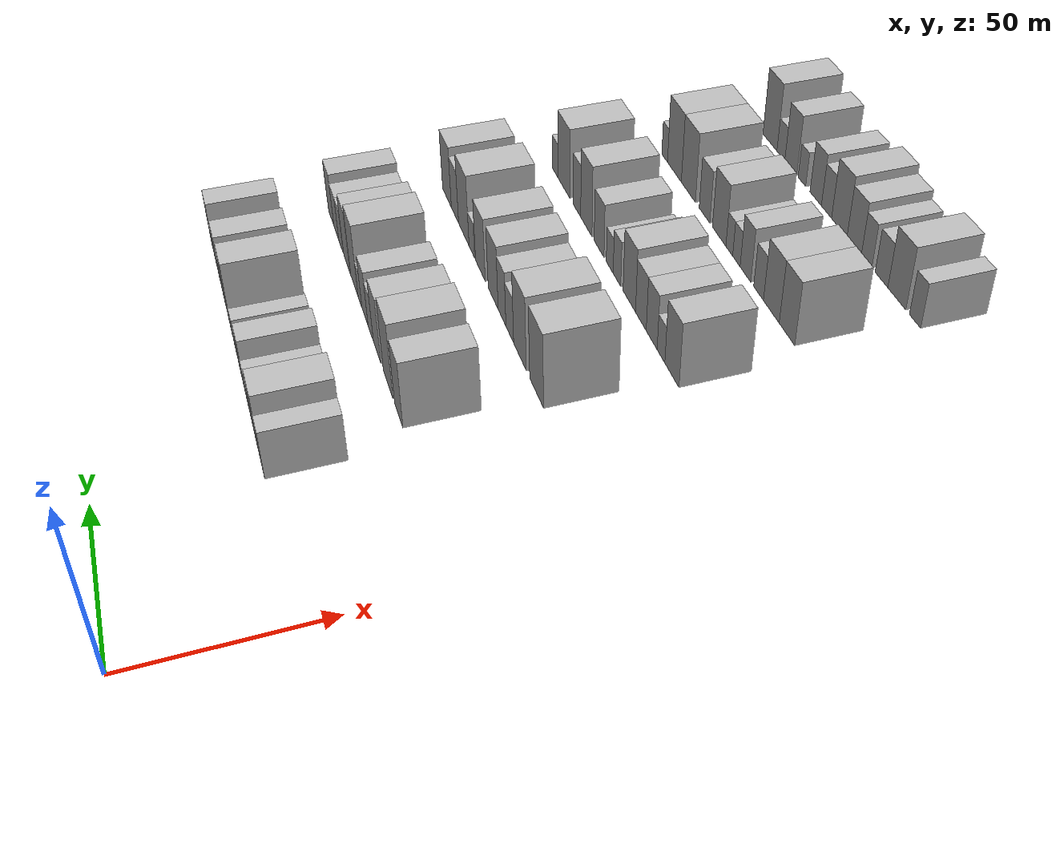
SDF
<sdf version="1.6">
 <world name="default">
  <model name="building_65">
   <static>1</static>
   <pose>50.0000 48.7703 0 0.000000 0.000000 0.000000</pose>
   <link name="link">
    <pose>0 0 7.50 0 0 0</pose>
    <collision name="collision"><geometry><box><size>20.0000 6.1437 15.0000</size></box></geometry></collision>
    <visual name="visual">
     <cast_shadows>0</cast_shadows>
     <geometry><box><size>20.0000 6.1437 15.0000</size></box></geometry>
     <material>
      <script>
       <uri>model://HANNAS_wall/materials/scripts</uri>
       <uri>model://HANNAS_wall/materials/textures</uri>
       <name>vrc/HANNAS_wall</name>
      </script>
     </material>
    </visual>
   </link>
  </model>
  <model name="building_66">
   <static>1</static>
   <pose>50.0000 56.8544 0 0.000000 0.000000 0.000000</pose>
   <link name="link">
    <pose>0 0 10.50 0 0 0</pose>
    <collision name="collision"><geometry><box><size>20.0000 10.0246 21.0000</size></box></geometry></collision>
    <visual name="visual">
     <cast_shadows>0</cast_shadows>
     <geometry><box><size>20.0000 10.0246 21.0000</size></box></geometry>
     <material>
      <script>
       <uri>model://HANNAS_wall/materials/scripts</uri>
       <uri>model://HANNAS_wall/materials/textures</uri>
       <name>vrc/HANNAS_wall</name>
      </script>
     </material>
    </visual>
   </link>
  </model>
  <model name="building_67">
   <static>1</static>
   <pose>50.0000 65.7349 0 0.000000 0.000000 0.000000</pose>
   <link name="link">
    <pose>0 0 6.00 0 0 0</pose>
    <collision name="collision"><geometry><box><size>20.0000 5.7364 12.0000</size></box></geometry></collision>
    <visual name="visual">
     <cast_shadows>0</cast_shadows>
     <geometry><box><size>20.0000 5.7364 12.0000</size></box></geometry>
     <material>
      <script>
       <uri>model://HANNAS_wall/materials/scripts</uri>
       <uri>model://HANNAS_wall/materials/textures</uri>
       <name>vrc/HANNAS_wall</name>
      </script>
     </material>
    </visual>
   </link>
  </model>
  <model name="building_68">
   <static>1</static>
   <pose>50.0000 73.3322 0 0.000000 0.000000 0.000000</pose>
   <link name="link">
    <pose>0 0 6.00 0 0 0</pose>
    <collision name="collision"><geometry><box><size>20.0000 5.4581 12.0000</size></box></geometry></collision>
    <visual name="visual">
     <cast_shadows>0</cast_shadows>
     <geometry><box><size>20.0000 5.4581 12.0000</size></box></geometry>
     <material>
      <script>
       <uri>model://HANNAS_wall/materials/scripts</uri>
       <uri>model://HANNAS_wall/materials/textures</uri>
       <name>vrc/HANNAS_wall</name>
      </script>
     </material>
    </visual>
   </link>
  </model>
  <model name="building_69">
   <static>1</static>
   <pose>50.0000 79.7934 0 0.000000 0.000000 0.000000</pose>
   <link name="link">
    <pose>0 0 9.00 0 0 0</pose>
    <collision name="collision"><geometry><box><size>20.0000 7.4644 18.0000</size></box></geometry></collision>
    <visual name="visual">
     <cast_shadows>0</cast_shadows>
     <geometry><box><size>20.0000 7.4644 18.0000</size></box></geometry>
     <material>
      <script>
       <uri>model://HANNAS_wall/materials/scripts</uri>
       <uri>model://HANNAS_wall/materials/textures</uri>
       <name>vrc/HANNAS_wall</name>
      </script>
     </material>
    </visual>
   </link>
  </model>
  <model name="building_70">
   <static>1</static>
   <pose>50.0000 86.3580 0 0.000000 0.000000 0.000000</pose>
   <link name="link">
    <pose>0 0 6.00 0 0 0</pose>
    <collision name="collision"><geometry><box><size>20.0000 5.6650 12.0000</size></box></geometry></collision>
    <visual name="visual">
     <cast_shadows>0</cast_shadows>
     <geometry><box><size>20.0000 5.6650 12.0000</size></box></geometry>
     <material>
      <script>
       <uri>model://HANNAS_wall/materials/scripts</uri>
       <uri>model://HANNAS_wall/materials/textures</uri>
       <name>vrc/HANNAS_wall</name>
      </script>
     </material>
    </visual>
   </link>
  </model>
  <model name="building_71">
   <static>1</static>
   <pose>50.0000 94.8161 0 0.000000 0.000000 0.000000</pose>
   <link name="link">
    <pose>0 0 6.00 0 0 0</pose>
    <collision name="collision"><geometry><box><size>20.0000 5.2511 12.0000</size></box></geometry></collision>
    <visual name="visual">
     <cast_shadows>0</cast_shadows>
     <geometry><box><size>20.0000 5.2511 12.0000</size></box></geometry>
     <material>
      <script>
       <uri>model://HANNAS_wall/materials/scripts</uri>
       <uri>model://HANNAS_wall/materials/textures</uri>
       <name>vrc/HANNAS_wall</name>
      </script>
     </material>
    </visual>
   </link>
  </model>
  <model name="building_72">
   <static>1</static>
   <pose>50.0000 105.2425 0 0.000000 0.000000 0.000000</pose>
   <link name="link">
    <pose>0 0 12.00 0 0 0</pose>
    <collision name="collision"><geometry><box><size>20.0000 9.6018 24.0000</size></box></geometry></collision>
    <visual name="visual">
     <cast_shadows>0</cast_shadows>
     <geometry><box><size>20.0000 9.6018 24.0000</size></box></geometry>
     <material>
      <script>
       <uri>model://HANNAS_wall/materials/scripts</uri>
       <uri>model://HANNAS_wall/materials/textures</uri>
       <name>vrc/HANNAS_wall</name>
      </script>
     </material>
    </visual>
   </link>
  </model>
  <model name="building_73">
   <static>1</static>
   <pose>50.0000 116.6393 0 0.000000 0.000000 0.000000</pose>
   <link name="link">
    <pose>0 0 7.50 0 0 0</pose>
    <collision name="collision"><geometry><box><size>20.0000 7.1916 15.0000</size></box></geometry></collision>
    <visual name="visual">
     <cast_shadows>0</cast_shadows>
     <geometry><box><size>20.0000 7.1916 15.0000</size></box></geometry>
     <material>
      <script>
       <uri>model://HANNAS_wall/materials/scripts</uri>
       <uri>model://HANNAS_wall/materials/textures</uri>
       <name>vrc/HANNAS_wall</name>
      </script>
     </material>
    </visual>
   </link>
  </model>
  <model name="building_74">
   <static>1</static>
   <pose>50.0000 125.4034 0 0.000000 0.000000 0.000000</pose>
   <link name="link">
    <pose>0 0 9.00 0 0 0</pose>
    <collision name="collision"><geometry><box><size>20.0000 8.3367 18.0000</size></box></geometry></collision>
    <visual name="visual">
     <cast_shadows>0</cast_shadows>
     <geometry><box><size>20.0000 8.3367 18.0000</size></box></geometry>
     <material>
      <script>
       <uri>model://HANNAS_wall/materials/scripts</uri>
       <uri>model://HANNAS_wall/materials/textures</uri>
       <name>vrc/HANNAS_wall</name>
      </script>
     </material>
    </visual>
   </link>
  </model>
  <model name="building_75">
   <static>1</static>
   <pose>50.0000 135.0769 0 0.000000 0.000000 0.000000</pose>
   <link name="link">
    <pose>0 0 6.00 0 0 0</pose>
    <collision name="collision"><geometry><box><size>20.0000 5.0101 12.0000</size></box></geometry></collision>
    <visual name="visual">
     <cast_shadows>0</cast_shadows>
     <geometry><box><size>20.0000 5.0101 12.0000</size></box></geometry>
     <material>
      <script>
       <uri>model://HANNAS_wall/materials/scripts</uri>
       <uri>model://HANNAS_wall/materials/textures</uri>
       <name>vrc/HANNAS_wall</name>
      </script>
     </material>
    </visual>
   </link>
  </model>
  <model name="building_76">
   <static>1</static>
   <pose>50.0000 141.3624 0 0.000000 0.000000 0.000000</pose>
   <link name="link">
    <pose>0 0 9.00 0 0 0</pose>
    <collision name="collision"><geometry><box><size>20.0000 7.5610 18.0000</size></box></geometry></collision>
    <visual name="visual">
     <cast_shadows>0</cast_shadows>
     <geometry><box><size>20.0000 7.5610 18.0000</size></box></geometry>
     <material>
      <script>
       <uri>model://HANNAS_wall/materials/scripts</uri>
       <uri>model://HANNAS_wall/materials/textures</uri>
       <name>vrc/HANNAS_wall</name>
      </script>
     </material>
    </visual>
   </link>
  </model>
  <model name="building_198">
   <static>1</static>
   <pose>85.0000 57.1970 0 0.000000 0.000000 0.000000</pose>
   <link name="link">
    <pose>0 0 10.50 0 0 0</pose>
    <collision name="collision"><geometry><box><size>20.0000 9.2751 21.0000</size></box></geometry></collision>
    <visual name="visual">
     <cast_shadows>0</cast_shadows>
     <geometry><box><size>20.0000 9.2751 21.0000</size></box></geometry>
     <material>
      <script>
       <uri>model://HANNAS_wall/materials/scripts</uri>
       <uri>model://HANNAS_wall/materials/textures</uri>
       <name>vrc/HANNAS_wall</name>
      </script>
     </material>
    </visual>
   </link>
  </model>
  <model name="building_199">
   <static>1</static>
   <pose>85.0000 69.3545 0 0.000000 0.000000 0.000000</pose>
   <link name="link">
    <pose>0 0 12.00 0 0 0</pose>
    <collision name="collision"><geometry><box><size>20.0000 11.0399 24.0000</size></box></geometry></collision>
    <visual name="visual">
     <cast_shadows>0</cast_shadows>
     <geometry><box><size>20.0000 11.0399 24.0000</size></box></geometry>
     <material>
      <script>
       <uri>model://HANNAS_wall/materials/scripts</uri>
       <uri>model://HANNAS_wall/materials/textures</uri>
       <name>vrc/HANNAS_wall</name>
      </script>
     </material>
    </visual>
   </link>
  </model>
  <model name="building_200">
   <static>1</static>
   <pose>85.0000 82.4718 0 0.000000 0.000000 0.000000</pose>
   <link name="link">
    <pose>0 0 10.50 0 0 0</pose>
    <collision name="collision"><geometry><box><size>20.0000 9.1945 21.0000</size></box></geometry></collision>
    <visual name="visual">
     <cast_shadows>0</cast_shadows>
     <geometry><box><size>20.0000 9.1945 21.0000</size></box></geometry>
     <material>
      <script>
       <uri>model://HANNAS_wall/materials/scripts</uri>
       <uri>model://HANNAS_wall/materials/textures</uri>
       <name>vrc/HANNAS_wall</name>
      </script>
     </material>
    </visual>
   </link>
  </model>
  <model name="building_201">
   <static>1</static>
   <pose>85.0000 90.3337 0 0.000000 0.000000 0.000000</pose>
   <link name="link">
    <pose>0 0 7.50 0 0 0</pose>
    <collision name="collision"><geometry><box><size>20.0000 6.5294 15.0000</size></box></geometry></collision>
    <visual name="visual">
     <cast_shadows>0</cast_shadows>
     <geometry><box><size>20.0000 6.5294 15.0000</size></box></geometry>
     <material>
      <script>
       <uri>model://HANNAS_wall/materials/scripts</uri>
       <uri>model://HANNAS_wall/materials/textures</uri>
       <name>vrc/HANNAS_wall</name>
      </script>
     </material>
    </visual>
   </link>
  </model>
  <model name="building_202">
   <static>1</static>
   <pose>85.0000 97.6658 0 0.000000 0.000000 0.000000</pose>
   <link name="link">
    <pose>0 0 9.00 0 0 0</pose>
    <collision name="collision"><geometry><box><size>20.0000 8.1348 18.0000</size></box></geometry></collision>
    <visual name="visual">
     <cast_shadows>0</cast_shadows>
     <geometry><box><size>20.0000 8.1348 18.0000</size></box></geometry>
     <material>
      <script>
       <uri>model://HANNAS_wall/materials/scripts</uri>
       <uri>model://HANNAS_wall/materials/textures</uri>
       <name>vrc/HANNAS_wall</name>
      </script>
     </material>
    </visual>
   </link>
  </model>
  <model name="building_203">
   <static>1</static>
   <pose>85.0000 104.2302 0 0.000000 0.000000 0.000000</pose>
   <link name="link">
    <pose>0 0 6.00 0 0 0</pose>
    <collision name="collision"><geometry><box><size>20.0000 4.9940 12.0000</size></box></geometry></collision>
    <visual name="visual">
     <cast_shadows>0</cast_shadows>
     <geometry><box><size>20.0000 4.9940 12.0000</size></box></geometry>
     <material>
      <script>
       <uri>model://HANNAS_wall/materials/scripts</uri>
       <uri>model://HANNAS_wall/materials/textures</uri>
       <name>vrc/HANNAS_wall</name>
      </script>
     </material>
    </visual>
   </link>
  </model>
  <model name="building_204">
   <static>1</static>
   <pose>85.0000 111.8910 0 0.000000 0.000000 0.000000</pose>
   <link name="link">
    <pose>0 0 12.00 0 0 0</pose>
    <collision name="collision"><geometry><box><size>20.0000 10.3275 24.0000</size></box></geometry></collision>
    <visual name="visual">
     <cast_shadows>0</cast_shadows>
     <geometry><box><size>20.0000 10.3275 24.0000</size></box></geometry>
     <material>
      <script>
       <uri>model://HANNAS_wall/materials/scripts</uri>
       <uri>model://HANNAS_wall/materials/textures</uri>
       <name>vrc/HANNAS_wall</name>
      </script>
     </material>
    </visual>
   </link>
  </model>
  <model name="building_205">
   <static>1</static>
   <pose>85.0000 122.5408 0 0.000000 0.000000 0.000000</pose>
   <link name="link">
    <pose>0 0 10.50 0 0 0</pose>
    <collision name="collision"><geometry><box><size>20.0000 8.9722 21.0000</size></box></geometry></collision>
    <visual name="visual">
     <cast_shadows>0</cast_shadows>
     <geometry><box><size>20.0000 8.9722 21.0000</size></box></geometry>
     <material>
      <script>
       <uri>model://HANNAS_wall/materials/scripts</uri>
       <uri>model://HANNAS_wall/materials/textures</uri>
       <name>vrc/HANNAS_wall</name>
      </script>
     </material>
    </visual>
   </link>
  </model>
  <model name="building_206">
   <static>1</static>
   <pose>85.0000 131.1273 0 0.000000 0.000000 0.000000</pose>
   <link name="link">
    <pose>0 0 7.50 0 0 0</pose>
    <collision name="collision"><geometry><box><size>20.0000 6.2009 15.0000</size></box></geometry></collision>
    <visual name="visual">
     <cast_shadows>0</cast_shadows>
     <geometry><box><size>20.0000 6.2009 15.0000</size></box></geometry>
     <material>
      <script>
       <uri>model://HANNAS_wall/materials/scripts</uri>
       <uri>model://HANNAS_wall/materials/textures</uri>
       <name>vrc/HANNAS_wall</name>
      </script>
     </material>
    </visual>
   </link>
  </model>
  <model name="building_207">
   <static>1</static>
   <pose>85.0000 137.9564 0 0.000000 0.000000 0.000000</pose>
   <link name="link">
    <pose>0 0 7.50 0 0 0</pose>
    <collision name="collision"><geometry><box><size>20.0000 7.4573 15.0000</size></box></geometry></collision>
    <visual name="visual">
     <cast_shadows>0</cast_shadows>
     <geometry><box><size>20.0000 7.4573 15.0000</size></box></geometry>
     <material>
      <script>
       <uri>model://HANNAS_wall/materials/scripts</uri>
       <uri>model://HANNAS_wall/materials/textures</uri>
       <name>vrc/HANNAS_wall</name>
      </script>
     </material>
    </visual>
   </link>
  </model>
  <model name="building_208">
   <static>1</static>
   <pose>85.0000 145.8836 0 0.000000 0.000000 0.000000</pose>
   <link name="link">
    <pose>0 0 9.00 0 0 0</pose>
    <collision name="collision"><geometry><box><size>20.0000 8.3970 18.0000</size></box></geometry></collision>
    <visual name="visual">
     <cast_shadows>0</cast_shadows>
     <geometry><box><size>20.0000 8.3970 18.0000</size></box></geometry>
     <material>
      <script>
       <uri>model://HANNAS_wall/materials/scripts</uri>
       <uri>model://HANNAS_wall/materials/textures</uri>
       <name>vrc/HANNAS_wall</name>
      </script>
     </material>
    </visual>
   </link>
  </model>
  <model name="building_323">
   <static>1</static>
   <pose>120.0000 54.5116 0 0.000000 0.000000 0.000000</pose>
   <link name="link">
    <pose>0 0 12.00 0 0 0</pose>
    <collision name="collision"><geometry><box><size>20.0000 11.9206 24.0000</size></box></geometry></collision>
    <visual name="visual">
     <cast_shadows>0</cast_shadows>
     <geometry><box><size>20.0000 11.9206 24.0000</size></box></geometry>
     <material>
      <script>
       <uri>model://HANNAS_wall/materials/scripts</uri>
       <uri>model://HANNAS_wall/materials/textures</uri>
       <name>vrc/HANNAS_wall</name>
      </script>
     </material>
    </visual>
   </link>
  </model>
  <model name="building_324">
   <static>1</static>
   <pose>120.0000 69.2105 0 0.000000 0.000000 0.000000</pose>
   <link name="link">
    <pose>0 0 12.00 0 0 0</pose>
    <collision name="collision"><geometry><box><size>20.0000 11.4773 24.0000</size></box></geometry></collision>
    <visual name="visual">
     <cast_shadows>0</cast_shadows>
     <geometry><box><size>20.0000 11.4773 24.0000</size></box></geometry>
     <material>
      <script>
       <uri>model://HANNAS_wall/materials/scripts</uri>
       <uri>model://HANNAS_wall/materials/textures</uri>
       <name>vrc/HANNAS_wall</name>
      </script>
     </material>
    </visual>
   </link>
  </model>
  <model name="building_325">
   <static>1</static>
   <pose>120.0000 78.5973 0 0.000000 0.000000 0.000000</pose>
   <link name="link">
    <pose>0 0 7.50 0 0 0</pose>
    <collision name="collision"><geometry><box><size>20.0000 7.2962 15.0000</size></box></geometry></collision>
    <visual name="visual">
     <cast_shadows>0</cast_shadows>
     <geometry><box><size>20.0000 7.2962 15.0000</size></box></geometry>
     <material>
      <script>
       <uri>model://HANNAS_wall/materials/scripts</uri>
       <uri>model://HANNAS_wall/materials/textures</uri>
       <name>vrc/HANNAS_wall</name>
      </script>
     </material>
    </visual>
   </link>
  </model>
  <model name="building_326">
   <static>1</static>
   <pose>120.0000 86.0093 0 0.000000 0.000000 0.000000</pose>
   <link name="link">
    <pose>0 0 9.00 0 0 0</pose>
    <collision name="collision"><geometry><box><size>20.0000 7.5277 18.0000</size></box></geometry></collision>
    <visual name="visual">
     <cast_shadows>0</cast_shadows>
     <geometry><box><size>20.0000 7.5277 18.0000</size></box></geometry>
     <material>
      <script>
       <uri>model://HANNAS_wall/materials/scripts</uri>
       <uri>model://HANNAS_wall/materials/textures</uri>
       <name>vrc/HANNAS_wall</name>
      </script>
     </material>
    </visual>
   </link>
  </model>
  <model name="building_327">
   <static>1</static>
   <pose>120.0000 94.7848 0 0.000000 0.000000 0.000000</pose>
   <link name="link">
    <pose>0 0 10.50 0 0 0</pose>
    <collision name="collision"><geometry><box><size>20.0000 10.0233 21.0000</size></box></geometry></collision>
    <visual name="visual">
     <cast_shadows>0</cast_shadows>
     <geometry><box><size>20.0000 10.0233 21.0000</size></box></geometry>
     <material>
      <script>
       <uri>model://HANNAS_wall/materials/scripts</uri>
       <uri>model://HANNAS_wall/materials/textures</uri>
       <name>vrc/HANNAS_wall</name>
      </script>
     </material>
    </visual>
   </link>
  </model>
  <model name="building_328">
   <static>1</static>
   <pose>120.0000 107.9368 0 0.000000 0.000000 0.000000</pose>
   <link name="link">
    <pose>0 0 10.50 0 0 0</pose>
    <collision name="collision"><geometry><box><size>20.0000 10.2807 21.0000</size></box></geometry></collision>
    <visual name="visual">
     <cast_shadows>0</cast_shadows>
     <geometry><box><size>20.0000 10.2807 21.0000</size></box></geometry>
     <material>
      <script>
       <uri>model://HANNAS_wall/materials/scripts</uri>
       <uri>model://HANNAS_wall/materials/textures</uri>
       <name>vrc/HANNAS_wall</name>
      </script>
     </material>
    </visual>
   </link>
  </model>
  <model name="building_329">
   <static>1</static>
   <pose>120.0000 117.0765 0 0.000000 0.000000 0.000000</pose>
   <link name="link">
    <pose>0 0 6.00 0 0 0</pose>
    <collision name="collision"><geometry><box><size>20.0000 5.9987 12.0000</size></box></geometry></collision>
    <visual name="visual">
     <cast_shadows>0</cast_shadows>
     <geometry><box><size>20.0000 5.9987 12.0000</size></box></geometry>
     <material>
      <script>
       <uri>model://HANNAS_wall/materials/scripts</uri>
       <uri>model://HANNAS_wall/materials/textures</uri>
       <name>vrc/HANNAS_wall</name>
      </script>
     </material>
    </visual>
   </link>
  </model>
  <model name="building_330">
   <static>1</static>
   <pose>120.0000 125.9796 0 0.000000 0.000000 0.000000</pose>
   <link name="link">
    <pose>0 0 12.00 0 0 0</pose>
    <collision name="collision"><geometry><box><size>20.0000 11.8076 24.0000</size></box></geometry></collision>
    <visual name="visual">
     <cast_shadows>0</cast_shadows>
     <geometry><box><size>20.0000 11.8076 24.0000</size></box></geometry>
     <material>
      <script>
       <uri>model://HANNAS_wall/materials/scripts</uri>
       <uri>model://HANNAS_wall/materials/textures</uri>
       <name>vrc/HANNAS_wall</name>
      </script>
     </material>
    </visual>
   </link>
  </model>
  <model name="building_331">
   <static>1</static>
   <pose>120.0000 136.0870 0 0.000000 0.000000 0.000000</pose>
   <link name="link">
    <pose>0 0 9.00 0 0 0</pose>
    <collision name="collision"><geometry><box><size>20.0000 8.4071 18.0000</size></box></geometry></collision>
    <visual name="visual">
     <cast_shadows>0</cast_shadows>
     <geometry><box><size>20.0000 8.4071 18.0000</size></box></geometry>
     <material>
      <script>
       <uri>model://HANNAS_wall/materials/scripts</uri>
       <uri>model://HANNAS_wall/materials/textures</uri>
       <name>vrc/HANNAS_wall</name>
      </script>
     </material>
    </visual>
   </link>
  </model>
  <model name="building_332">
   <static>1</static>
   <pose>120.0000 145.5192 0 0.000000 0.000000 0.000000</pose>
   <link name="link">
    <pose>0 0 10.50 0 0 0</pose>
    <collision name="collision"><geometry><box><size>20.0000 10.4573 21.0000</size></box></geometry></collision>
    <visual name="visual">
     <cast_shadows>0</cast_shadows>
     <geometry><box><size>20.0000 10.4573 21.0000</size></box></geometry>
     <material>
      <script>
       <uri>model://HANNAS_wall/materials/scripts</uri>
       <uri>model://HANNAS_wall/materials/textures</uri>
       <name>vrc/HANNAS_wall</name>
      </script>
     </material>
    </visual>
   </link>
  </model>
  <model name="building_447">
   <static>1</static>
   <pose>155.0000 50.2174 0 0.000000 0.000000 0.000000</pose>
   <link name="link">
    <pose>0 0 10.50 0 0 0</pose>
    <collision name="collision"><geometry><box><size>20.0000 9.9378 21.0000</size></box></geometry></collision>
    <visual name="visual">
     <cast_shadows>0</cast_shadows>
     <geometry><box><size>20.0000 9.9378 21.0000</size></box></geometry>
     <material>
      <script>
       <uri>model://HANNAS_wall/materials/scripts</uri>
       <uri>model://HANNAS_wall/materials/textures</uri>
       <name>vrc/HANNAS_wall</name>
      </script>
     </material>
    </visual>
   </link>
  </model>
  <model name="building_448">
   <static>1</static>
   <pose>155.0000 57.9825 0 0.000000 0.000000 0.000000</pose>
   <link name="link">
    <pose>0 0 6.00 0 0 0</pose>
    <collision name="collision"><geometry><box><size>20.0000 5.5925 12.0000</size></box></geometry></collision>
    <visual name="visual">
     <cast_shadows>0</cast_shadows>
     <geometry><box><size>20.0000 5.5925 12.0000</size></box></geometry>
     <material>
      <script>
       <uri>model://HANNAS_wall/materials/scripts</uri>
       <uri>model://HANNAS_wall/materials/textures</uri>
       <name>vrc/HANNAS_wall</name>
      </script>
     </material>
    </visual>
   </link>
  </model>
  <model name="building_449">
   <static>1</static>
   <pose>155.0000 64.8405 0 0.000000 0.000000 0.000000</pose>
   <link name="link">
    <pose>0 0 9.00 0 0 0</pose>
    <collision name="collision"><geometry><box><size>20.0000 8.1235 18.0000</size></box></geometry></collision>
    <visual name="visual">
     <cast_shadows>0</cast_shadows>
     <geometry><box><size>20.0000 8.1235 18.0000</size></box></geometry>
     <material>
      <script>
       <uri>model://HANNAS_wall/materials/scripts</uri>
       <uri>model://HANNAS_wall/materials/textures</uri>
       <name>vrc/HANNAS_wall</name>
      </script>
     </material>
    </visual>
   </link>
  </model>
  <model name="building_450">
   <static>1</static>
   <pose>155.0000 73.0160 0 0.000000 0.000000 0.000000</pose>
   <link name="link">
    <pose>0 0 9.00 0 0 0</pose>
    <collision name="collision"><geometry><box><size>20.0000 8.2276 18.0000</size></box></geometry></collision>
    <visual name="visual">
     <cast_shadows>0</cast_shadows>
     <geometry><box><size>20.0000 8.2276 18.0000</size></box></geometry>
     <material>
      <script>
       <uri>model://HANNAS_wall/materials/scripts</uri>
       <uri>model://HANNAS_wall/materials/textures</uri>
       <name>vrc/HANNAS_wall</name>
      </script>
     </material>
    </visual>
   </link>
  </model>
  <model name="building_451">
   <static>1</static>
   <pose>155.0000 82.0746 0 0.000000 0.000000 0.000000</pose>
   <link name="link">
    <pose>0 0 10.50 0 0 0</pose>
    <collision name="collision"><geometry><box><size>20.0000 9.8895 21.0000</size></box></geometry></collision>
    <visual name="visual">
     <cast_shadows>0</cast_shadows>
     <geometry><box><size>20.0000 9.8895 21.0000</size></box></geometry>
     <material>
      <script>
       <uri>model://HANNAS_wall/materials/scripts</uri>
       <uri>model://HANNAS_wall/materials/textures</uri>
       <name>vrc/HANNAS_wall</name>
      </script>
     </material>
    </visual>
   </link>
  </model>
  <model name="building_452">
   <static>1</static>
   <pose>155.0000 92.0950 0 0.000000 0.000000 0.000000</pose>
   <link name="link">
    <pose>0 0 7.50 0 0 0</pose>
    <collision name="collision"><geometry><box><size>20.0000 6.1512 15.0000</size></box></geometry></collision>
    <visual name="visual">
     <cast_shadows>0</cast_shadows>
     <geometry><box><size>20.0000 6.1512 15.0000</size></box></geometry>
     <material>
      <script>
       <uri>model://HANNAS_wall/materials/scripts</uri>
       <uri>model://HANNAS_wall/materials/textures</uri>
       <name>vrc/HANNAS_wall</name>
      </script>
     </material>
    </visual>
   </link>
  </model>
  <model name="building_453">
   <static>1</static>
   <pose>155.0000 98.0946 0 0.000000 0.000000 0.000000</pose>
   <link name="link">
    <pose>0 0 6.00 0 0 0</pose>
    <collision name="collision"><geometry><box><size>20.0000 5.8481 12.0000</size></box></geometry></collision>
    <visual name="visual">
     <cast_shadows>0</cast_shadows>
     <geometry><box><size>20.0000 5.8481 12.0000</size></box></geometry>
     <material>
      <script>
       <uri>model://HANNAS_wall/materials/scripts</uri>
       <uri>model://HANNAS_wall/materials/textures</uri>
       <name>vrc/HANNAS_wall</name>
      </script>
     </material>
    </visual>
   </link>
  </model>
  <model name="building_454">
   <static>1</static>
   <pose>155.0000 107.2771 0 0.000000 0.000000 0.000000</pose>
   <link name="link">
    <pose>0 0 9.00 0 0 0</pose>
    <collision name="collision"><geometry><box><size>20.0000 8.5168 18.0000</size></box></geometry></collision>
    <visual name="visual">
     <cast_shadows>0</cast_shadows>
     <geometry><box><size>20.0000 8.5168 18.0000</size></box></geometry>
     <material>
      <script>
       <uri>model://HANNAS_wall/materials/scripts</uri>
       <uri>model://HANNAS_wall/materials/textures</uri>
       <name>vrc/HANNAS_wall</name>
      </script>
     </material>
    </visual>
   </link>
  </model>
  <model name="building_455">
   <static>1</static>
   <pose>155.0000 118.6561 0 0.000000 0.000000 0.000000</pose>
   <link name="link">
    <pose>0 0 12.00 0 0 0</pose>
    <collision name="collision"><geometry><box><size>20.0000 10.2411 24.0000</size></box></geometry></collision>
    <visual name="visual">
     <cast_shadows>0</cast_shadows>
     <geometry><box><size>20.0000 10.2411 24.0000</size></box></geometry>
     <material>
      <script>
       <uri>model://HANNAS_wall/materials/scripts</uri>
       <uri>model://HANNAS_wall/materials/textures</uri>
       <name>vrc/HANNAS_wall</name>
      </script>
     </material>
    </visual>
   </link>
  </model>
  <model name="building_456">
   <static>1</static>
   <pose>155.0000 127.4359 0 0.000000 0.000000 0.000000</pose>
   <link name="link">
    <pose>0 0 9.00 0 0 0</pose>
    <collision name="collision"><geometry><box><size>20.0000 7.3186 18.0000</size></box></geometry></collision>
    <visual name="visual">
     <cast_shadows>0</cast_shadows>
     <geometry><box><size>20.0000 7.3186 18.0000</size></box></geometry>
     <material>
      <script>
       <uri>model://HANNAS_wall/materials/scripts</uri>
       <uri>model://HANNAS_wall/materials/textures</uri>
       <name>vrc/HANNAS_wall</name>
      </script>
     </material>
    </visual>
   </link>
  </model>
  <model name="building_457">
   <static>1</static>
   <pose>155.0000 139.9055 0 0.000000 0.000000 0.000000</pose>
   <link name="link">
    <pose>0 0 12.00 0 0 0</pose>
    <collision name="collision"><geometry><box><size>20.0000 11.6207 24.0000</size></box></geometry></collision>
    <visual name="visual">
     <cast_shadows>0</cast_shadows>
     <geometry><box><size>20.0000 11.6207 24.0000</size></box></geometry>
     <material>
      <script>
       <uri>model://HANNAS_wall/materials/scripts</uri>
       <uri>model://HANNAS_wall/materials/textures</uri>
       <name>vrc/HANNAS_wall</name>
      </script>
     </material>
    </visual>
   </link>
  </model>
  <model name="building_458">
   <static>1</static>
   <pose>155.0000 148.5525 0 0.000000 0.000000 0.000000</pose>
   <link name="link">
    <pose>0 0 6.00 0 0 0</pose>
    <collision name="collision"><geometry><box><size>20.0000 5.6733 12.0000</size></box></geometry></collision>
    <visual name="visual">
     <cast_shadows>0</cast_shadows>
     <geometry><box><size>20.0000 5.6733 12.0000</size></box></geometry>
     <material>
      <script>
       <uri>model://HANNAS_wall/materials/scripts</uri>
       <uri>model://HANNAS_wall/materials/textures</uri>
       <name>vrc/HANNAS_wall</name>
      </script>
     </material>
    </visual>
   </link>
  </model>
  <model name="building_577">
   <static>1</static>
   <pose>190.0000 55.9498 0 0.000000 0.000000 0.000000</pose>
   <link name="link">
    <pose>0 0 10.50 0 0 0</pose>
    <collision name="collision"><geometry><box><size>20.0000 9.7332 21.0000</size></box></geometry></collision>
    <visual name="visual">
     <cast_shadows>0</cast_shadows>
     <geometry><box><size>20.0000 9.7332 21.0000</size></box></geometry>
     <material>
      <script>
       <uri>model://HANNAS_wall/materials/scripts</uri>
       <uri>model://HANNAS_wall/materials/textures</uri>
       <name>vrc/HANNAS_wall</name>
      </script>
     </material>
    </visual>
   </link>
  </model>
  <model name="building_578">
   <static>1</static>
   <pose>190.0000 65.9255 0 0.000000 0.000000 0.000000</pose>
   <link name="link">
    <pose>0 0 10.50 0 0 0</pose>
    <collision name="collision"><geometry><box><size>20.0000 10.2181 21.0000</size></box></geometry></collision>
    <visual name="visual">
     <cast_shadows>0</cast_shadows>
     <geometry><box><size>20.0000 10.2181 21.0000</size></box></geometry>
     <material>
      <script>
       <uri>model://HANNAS_wall/materials/scripts</uri>
       <uri>model://HANNAS_wall/materials/textures</uri>
       <name>vrc/HANNAS_wall</name>
      </script>
     </material>
    </visual>
   </link>
  </model>
  <model name="building_579">
   <static>1</static>
   <pose>190.0000 74.3119 0 0.000000 0.000000 0.000000</pose>
   <link name="link">
    <pose>0 0 7.50 0 0 0</pose>
    <collision name="collision"><geometry><box><size>20.0000 6.5547 15.0000</size></box></geometry></collision>
    <visual name="visual">
     <cast_shadows>0</cast_shadows>
     <geometry><box><size>20.0000 6.5547 15.0000</size></box></geometry>
     <material>
      <script>
       <uri>model://HANNAS_wall/materials/scripts</uri>
       <uri>model://HANNAS_wall/materials/textures</uri>
       <name>vrc/HANNAS_wall</name>
      </script>
     </material>
    </visual>
   </link>
  </model>
  <model name="building_580">
   <static>1</static>
   <pose>190.0000 83.2847 0 0.000000 0.000000 0.000000</pose>
   <link name="link">
    <pose>0 0 9.00 0 0 0</pose>
    <collision name="collision"><geometry><box><size>20.0000 7.3909 18.0000</size></box></geometry></collision>
    <visual name="visual">
     <cast_shadows>0</cast_shadows>
     <geometry><box><size>20.0000 7.3909 18.0000</size></box></geometry>
     <material>
      <script>
       <uri>model://HANNAS_wall/materials/scripts</uri>
       <uri>model://HANNAS_wall/materials/textures</uri>
       <name>vrc/HANNAS_wall</name>
      </script>
     </material>
    </visual>
   </link>
  </model>
  <model name="building_581">
   <static>1</static>
   <pose>190.0000 89.6209 0 0.000000 0.000000 0.000000</pose>
   <link name="link">
    <pose>0 0 6.00 0 0 0</pose>
    <collision name="collision"><geometry><box><size>20.0000 5.2814 12.0000</size></box></geometry></collision>
    <visual name="visual">
     <cast_shadows>0</cast_shadows>
     <geometry><box><size>20.0000 5.2814 12.0000</size></box></geometry>
     <material>
      <script>
       <uri>model://HANNAS_wall/materials/scripts</uri>
       <uri>model://HANNAS_wall/materials/textures</uri>
       <name>vrc/HANNAS_wall</name>
      </script>
     </material>
    </visual>
   </link>
  </model>
  <model name="building_582">
   <static>1</static>
   <pose>190.0000 94.7127 0 0.000000 0.000000 0.000000</pose>
   <link name="link">
    <pose>0 0 6.00 0 0 0</pose>
    <collision name="collision"><geometry><box><size>20.0000 4.9022 12.0000</size></box></geometry></collision>
    <visual name="visual">
     <cast_shadows>0</cast_shadows>
     <geometry><box><size>20.0000 4.9022 12.0000</size></box></geometry>
     <material>
      <script>
       <uri>model://HANNAS_wall/materials/scripts</uri>
       <uri>model://HANNAS_wall/materials/textures</uri>
       <name>vrc/HANNAS_wall</name>
      </script>
     </material>
    </visual>
   </link>
  </model>
  <model name="building_583">
   <static>1</static>
   <pose>190.0000 102.1644 0 0.000000 0.000000 0.000000</pose>
   <link name="link">
    <pose>0 0 10.50 0 0 0</pose>
    <collision name="collision"><geometry><box><size>20.0000 10.0011 21.0000</size></box></geometry></collision>
    <visual name="visual">
     <cast_shadows>0</cast_shadows>
     <geometry><box><size>20.0000 10.0011 21.0000</size></box></geometry>
     <material>
      <script>
       <uri>model://HANNAS_wall/materials/scripts</uri>
       <uri>model://HANNAS_wall/materials/textures</uri>
       <name>vrc/HANNAS_wall</name>
      </script>
     </material>
    </visual>
   </link>
  </model>
  <model name="building_584">
   <static>1</static>
   <pose>190.0000 113.2520 0 0.000000 0.000000 0.000000</pose>
   <link name="link">
    <pose>0 0 9.00 0 0 0</pose>
    <collision name="collision"><geometry><box><size>20.0000 8.1742 18.0000</size></box></geometry></collision>
    <visual name="visual">
     <cast_shadows>0</cast_shadows>
     <geometry><box><size>20.0000 8.1742 18.0000</size></box></geometry>
     <material>
      <script>
       <uri>model://HANNAS_wall/materials/scripts</uri>
       <uri>model://HANNAS_wall/materials/textures</uri>
       <name>vrc/HANNAS_wall</name>
      </script>
     </material>
    </visual>
   </link>
  </model>
  <model name="building_585">
   <static>1</static>
   <pose>190.0000 126.0266 0 0.000000 0.000000 0.000000</pose>
   <link name="link">
    <pose>0 0 12.00 0 0 0</pose>
    <collision name="collision"><geometry><box><size>20.0000 11.3749 24.0000</size></box></geometry></collision>
    <visual name="visual">
     <cast_shadows>0</cast_shadows>
     <geometry><box><size>20.0000 11.3749 24.0000</size></box></geometry>
     <material>
      <script>
       <uri>model://HANNAS_wall/materials/scripts</uri>
       <uri>model://HANNAS_wall/materials/textures</uri>
       <name>vrc/HANNAS_wall</name>
      </script>
     </material>
    </visual>
   </link>
  </model>
  <model name="building_586">
   <static>1</static>
   <pose>190.0000 137.5193 0 0.000000 0.000000 0.000000</pose>
   <link name="link">
    <pose>0 0 12.00 0 0 0</pose>
    <collision name="collision"><geometry><box><size>20.0000 11.6105 24.0000</size></box></geometry></collision>
    <visual name="visual">
     <cast_shadows>0</cast_shadows>
     <geometry><box><size>20.0000 11.6105 24.0000</size></box></geometry>
     <material>
      <script>
       <uri>model://HANNAS_wall/materials/scripts</uri>
       <uri>model://HANNAS_wall/materials/textures</uri>
       <name>vrc/HANNAS_wall</name>
      </script>
     </material>
    </visual>
   </link>
  </model>
  <model name="building_587">
   <static>1</static>
   <pose>190.0000 145.7478 0 0.000000 0.000000 0.000000</pose>
   <link name="link">
    <pose>0 0 6.00 0 0 0</pose>
    <collision name="collision"><geometry><box><size>20.0000 4.8467 12.0000</size></box></geometry></collision>
    <visual name="visual">
     <cast_shadows>0</cast_shadows>
     <geometry><box><size>20.0000 4.8467 12.0000</size></box></geometry>
     <material>
      <script>
       <uri>model://HANNAS_wall/materials/scripts</uri>
       <uri>model://HANNAS_wall/materials/textures</uri>
       <name>vrc/HANNAS_wall</name>
      </script>
     </material>
    </visual>
   </link>
  </model>
  <model name="building_695">
   <static>1</static>
   <pose>225.0000 50.2087 0 0.000000 0.000000 0.000000</pose>
   <link name="link">
    <pose>0 0 7.50 0 0 0</pose>
    <collision name="collision"><geometry><box><size>20.0000 6.1262 15.0000</size></box></geometry></collision>
    <visual name="visual">
     <cast_shadows>0</cast_shadows>
     <geometry><box><size>20.0000 6.1262 15.0000</size></box></geometry>
     <material>
      <script>
       <uri>model://HANNAS_wall/materials/scripts</uri>
       <uri>model://HANNAS_wall/materials/textures</uri>
       <name>vrc/HANNAS_wall</name>
      </script>
     </material>
    </visual>
   </link>
  </model>
  <model name="building_696">
   <static>1</static>
   <pose>225.0000 60.4021 0 0.000000 0.000000 0.000000</pose>
   <link name="link">
    <pose>0 0 10.50 0 0 0</pose>
    <collision name="collision"><geometry><box><size>20.0000 10.2606 21.0000</size></box></geometry></collision>
    <visual name="visual">
     <cast_shadows>0</cast_shadows>
     <geometry><box><size>20.0000 10.2606 21.0000</size></box></geometry>
     <material>
      <script>
       <uri>model://HANNAS_wall/materials/scripts</uri>
       <uri>model://HANNAS_wall/materials/textures</uri>
       <name>vrc/HANNAS_wall</name>
      </script>
     </material>
    </visual>
   </link>
  </model>
  <model name="building_697">
   <static>1</static>
   <pose>225.0000 69.2415 0 0.000000 0.000000 0.000000</pose>
   <link name="link">
    <pose>0 0 7.50 0 0 0</pose>
    <collision name="collision"><geometry><box><size>20.0000 7.4182 15.0000</size></box></geometry></collision>
    <visual name="visual">
     <cast_shadows>0</cast_shadows>
     <geometry><box><size>20.0000 7.4182 15.0000</size></box></geometry>
     <material>
      <script>
       <uri>model://HANNAS_wall/materials/scripts</uri>
       <uri>model://HANNAS_wall/materials/textures</uri>
       <name>vrc/HANNAS_wall</name>
      </script>
     </material>
    </visual>
   </link>
  </model>
  <model name="building_698">
   <static>1</static>
   <pose>225.0000 78.1392 0 0.000000 0.000000 0.000000</pose>
   <link name="link">
    <pose>0 0 7.50 0 0 0</pose>
    <collision name="collision"><geometry><box><size>20.0000 6.3772 15.0000</size></box></geometry></collision>
    <visual name="visual">
     <cast_shadows>0</cast_shadows>
     <geometry><box><size>20.0000 6.3772 15.0000</size></box></geometry>
     <material>
      <script>
       <uri>model://HANNAS_wall/materials/scripts</uri>
       <uri>model://HANNAS_wall/materials/textures</uri>
       <name>vrc/HANNAS_wall</name>
      </script>
     </material>
    </visual>
   </link>
  </model>
  <model name="building_699">
   <static>1</static>
   <pose>225.0000 85.8236 0 0.000000 0.000000 0.000000</pose>
   <link name="link">
    <pose>0 0 9.00 0 0 0</pose>
    <collision name="collision"><geometry><box><size>20.0000 8.9916 18.0000</size></box></geometry></collision>
    <visual name="visual">
     <cast_shadows>0</cast_shadows>
     <geometry><box><size>20.0000 8.9916 18.0000</size></box></geometry>
     <material>
      <script>
       <uri>model://HANNAS_wall/materials/scripts</uri>
       <uri>model://HANNAS_wall/materials/textures</uri>
       <name>vrc/HANNAS_wall</name>
      </script>
     </material>
    </visual>
   </link>
  </model>
  <model name="building_700">
   <static>1</static>
   <pose>225.0000 95.3054 0 0.000000 0.000000 0.000000</pose>
   <link name="link">
    <pose>0 0 10.50 0 0 0</pose>
    <collision name="collision"><geometry><box><size>20.0000 9.9720 21.0000</size></box></geometry></collision>
    <visual name="visual">
     <cast_shadows>0</cast_shadows>
     <geometry><box><size>20.0000 9.9720 21.0000</size></box></geometry>
     <material>
      <script>
       <uri>model://HANNAS_wall/materials/scripts</uri>
       <uri>model://HANNAS_wall/materials/textures</uri>
       <name>vrc/HANNAS_wall</name>
      </script>
     </material>
    </visual>
   </link>
  </model>
  <model name="building_701">
   <static>1</static>
   <pose>225.0000 103.6767 0 0.000000 0.000000 0.000000</pose>
   <link name="link">
    <pose>0 0 7.50 0 0 0</pose>
    <collision name="collision"><geometry><box><size>20.0000 6.7707 15.0000</size></box></geometry></collision>
    <visual name="visual">
     <cast_shadows>0</cast_shadows>
     <geometry><box><size>20.0000 6.7707 15.0000</size></box></geometry>
     <material>
      <script>
       <uri>model://HANNAS_wall/materials/scripts</uri>
       <uri>model://HANNAS_wall/materials/textures</uri>
       <name>vrc/HANNAS_wall</name>
      </script>
     </material>
    </visual>
   </link>
  </model>
  <model name="building_702">
   <static>1</static>
   <pose>225.0000 110.9285 0 0.000000 0.000000 0.000000</pose>
   <link name="link">
    <pose>0 0 9.00 0 0 0</pose>
    <collision name="collision"><geometry><box><size>20.0000 7.7329 18.0000</size></box></geometry></collision>
    <visual name="visual">
     <cast_shadows>0</cast_shadows>
     <geometry><box><size>20.0000 7.7329 18.0000</size></box></geometry>
     <material>
      <script>
       <uri>model://HANNAS_wall/materials/scripts</uri>
       <uri>model://HANNAS_wall/materials/textures</uri>
       <name>vrc/HANNAS_wall</name>
      </script>
     </material>
    </visual>
   </link>
  </model>
  <model name="building_703">
   <static>1</static>
   <pose>225.0000 120.4760 0 0.000000 0.000000 0.000000</pose>
   <link name="link">
    <pose>0 0 6.00 0 0 0</pose>
    <collision name="collision"><geometry><box><size>20.0000 5.3620 12.0000</size></box></geometry></collision>
    <visual name="visual">
     <cast_shadows>0</cast_shadows>
     <geometry><box><size>20.0000 5.3620 12.0000</size></box></geometry>
     <material>
      <script>
       <uri>model://HANNAS_wall/materials/scripts</uri>
       <uri>model://HANNAS_wall/materials/textures</uri>
       <name>vrc/HANNAS_wall</name>
      </script>
     </material>
    </visual>
   </link>
  </model>
  <model name="building_704">
   <static>1</static>
   <pose>225.0000 128.4418 0 0.000000 0.000000 0.000000</pose>
   <link name="link">
    <pose>0 0 10.50 0 0 0</pose>
    <collision name="collision"><geometry><box><size>20.0000 8.5696 21.0000</size></box></geometry></collision>
    <visual name="visual">
     <cast_shadows>0</cast_shadows>
     <geometry><box><size>20.0000 8.5696 21.0000</size></box></geometry>
     <material>
      <script>
       <uri>model://HANNAS_wall/materials/scripts</uri>
       <uri>model://HANNAS_wall/materials/textures</uri>
       <name>vrc/HANNAS_wall</name>
      </script>
     </material>
    </visual>
   </link>
  </model>
  <model name="building_705">
   <static>1</static>
   <pose>225.0000 135.6558 0 0.000000 0.000000 0.000000</pose>
   <link name="link">
    <pose>0 0 6.00 0 0 0</pose>
    <collision name="collision"><geometry><box><size>20.0000 5.8584 12.0000</size></box></geometry></collision>
    <visual name="visual">
     <cast_shadows>0</cast_shadows>
     <geometry><box><size>20.0000 5.8584 12.0000</size></box></geometry>
     <material>
      <script>
       <uri>model://HANNAS_wall/materials/scripts</uri>
       <uri>model://HANNAS_wall/materials/textures</uri>
       <name>vrc/HANNAS_wall</name>
      </script>
     </material>
    </visual>
   </link>
  </model>
  <model name="building_706">
   <static>1</static>
   <pose>225.0000 143.8840 0 0.000000 0.000000 0.000000</pose>
   <link name="link">
    <pose>0 0 12.00 0 0 0</pose>
    <collision name="collision"><geometry><box><size>20.0000 10.5980 24.0000</size></box></geometry></collision>
    <visual name="visual">
     <cast_shadows>0</cast_shadows>
     <geometry><box><size>20.0000 10.5980 24.0000</size></box></geometry>
     <material>
      <script>
       <uri>model://HANNAS_wall/materials/scripts</uri>
       <uri>model://HANNAS_wall/materials/textures</uri>
       <name>vrc/HANNAS_wall</name>
      </script>
     </material>
    </visual>
   </link>
  </model>
 </world>
</sdf>
